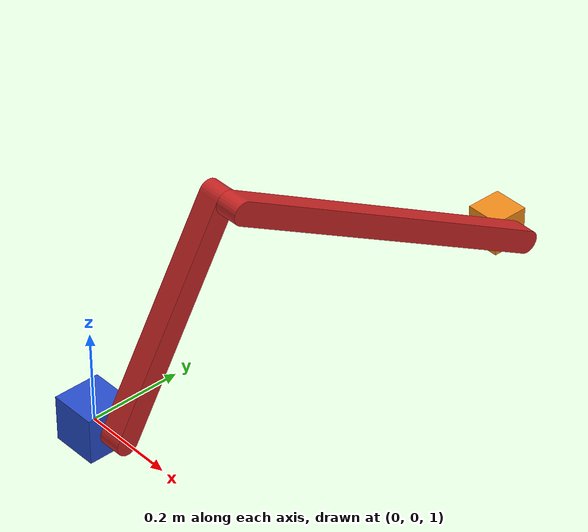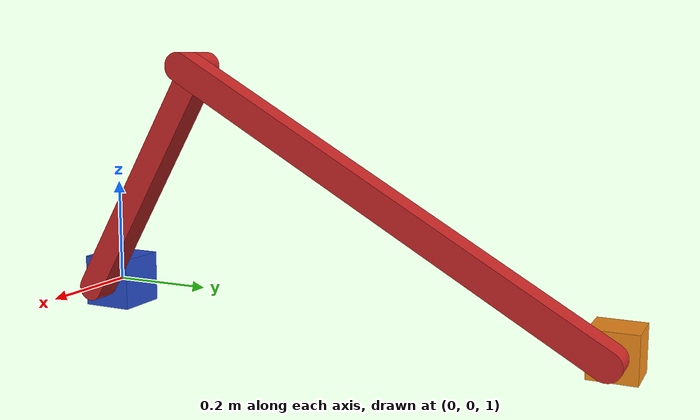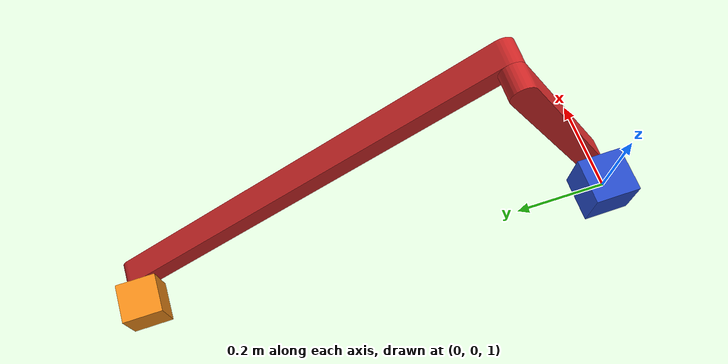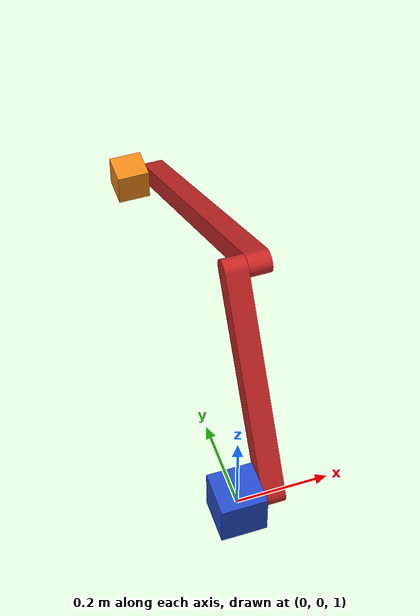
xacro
<?xml version="1.0"?>

<robot name="SliderCrank" xmlns:xacro="http://www.ros.org/wiki/xacro">

  <!-- Property -->
  <xacro:property name="M_PI" value="3.1415926535897931"/>
  <xacro:property name="deg2rad" value="${M_PI/180}"/>
  <xacro:property name="mass" value="1" />
  <xacro:property name="side" value="0.1" />
  <xacro:property name="link_side" value="${side/2}" />
  <xacro:property name="link1_length" value="${cos(60*deg2rad)+link_side}" />
  <xacro:property name="link2_length" value="${sin(60*deg2rad)+link_side}" />
  <xacro:property name="piston_side" value="${side*0.8}" />

  <!-- Import -->
  <xacro:include filename="$(find sc_description)/urdf/materials.xacro" />
  <xacro:include filename="$(find sc_description)/urdf/sc.gazebo" />
  <xacro:include filename="$(find sc_description)/urdf/sc.transmission" />

  <!-- macro -->
  <xacro:macro name="box_inertia" params="m dx dy dz">
    <inertia ixx="${m/12*(dy*dy + dz*dz)}" ixy="0.0" ixz="0.0"
             iyy="${m/12*(dx*dx + dz*dz)}" iyz="0.0"
             izz="${m/12*(dx*dx + dy*dy)}"/>
  </xacro:macro>

  <link name="world"/>

  <joint name="fixed" type="fixed">
    <parent link="world"/>
    <child link="SC_base"/>
    <origin xyz="0 0 ${side*10}" rpy="${90*deg2rad} 0 ${90*deg2rad}"/>
  </joint>

  <!-- base -->
  <link name="SC_base">
    <collision>
      <origin xyz="0 0 0" rpy="0 0 0"/>
      <geometry>
        <box size="${side} ${side} ${side}"/>
      </geometry>
    </collision>

    <visual>
      <origin xyz="0 0 0" rpy="0 0 0"/>
      <geometry>
        <box size="${side} ${side} ${side}"/>
      </geometry>
      <material name="blue"/>
    </visual>

    <inertial>
      <origin xyz="0 0 0" rpy="0 0 0"/>
      <mass value="${mass}"/>
      <xacro:box_inertia m="${mass}" dx="${side}" dy="${side}" dz="${side}"/>
    </inertial>
  </link>

  <joint name="REV01_Base_to_Lnik1" type="continuous">
    <axis xyz="0 0 1"/>
    <parent link="SC_base"/>
    <child link="SC_link1"/>
    <origin xyz="0 0 ${side/2+link_side/2}" rpy="0 0 ${-30*deg2rad}"/>
    <dynamics damping="0.7"/>
  </joint>

  <!-- link1 -->
  <link name="SC_link1">
    <collision>
      <origin rpy="0 0 0" xyz="0 ${cos(60*deg2rad)/2} 0"/>
      <geometry>
        <box size="${link_side} ${link1_length} ${link_side}"/>
      </geometry>
    </collision>

    <visual>
      <origin rpy="0 0 0" xyz="0 0 0"/>
      <geometry>
        <mesh filename="package://sc_description/meshes/SC_link1.stl"/>
      </geometry>
    </visual>

    <inertial>
      <origin rpy="0 0 0" xyz="0 ${cos(60*deg2rad)/2} 0"/>
      <mass value="${mass}"/>
      <xacro:box_inertia m="${mass}" dx="${link_side}" dy="${link1_length}" dz="${link_side}"/>
    </inertial>
  </link>

  <joint name="REV02_Lnik1_to_Lnik2" type="continuous">
    <axis xyz="0 0 1"/>
    <parent link="SC_link1"/>
    <child link="SC_link2"/>
    <origin rpy="0 0 ${-90*deg2rad}" xyz="0 ${cos(60*deg2rad)} ${link_side}"/>
    <dynamics damping="0.7"/>
  </joint>

  <!-- link2 -->
  <link name="SC_link2">
    <collision>
      <origin rpy="0 0 0" xyz="0 ${sin(60*deg2rad)/2} 0"/>
      <geometry>
        <box size="${link_side} ${link2_length} ${link_side}"/>
      </geometry>
    </collision>

    <visual>
      <origin rpy="0 0 0" xyz="0 0 0"/>
      <geometry>
        <mesh filename="package://sc_description/meshes/SC_link2.stl"/>
      </geometry>
    </visual>

    <inertial>
      <origin rpy="0 0 0" xyz="0 ${sin(60*deg2rad)/2} 0"/>
      <mass value="${mass}"/>
      <xacro:box_inertia m="${mass}" dx="${link_side}" dy="${link2_length}" dz="${link_side}"/>
    </inertial>
  </link>

  <joint name="REV03_Lnik2_to_Piston" type="continuous">
    <axis xyz="0 0 1"/>
    <parent link="SC_link2"/>
    <child link="SC_Piston"/>
    <origin rpy="0 0 ${120*deg2rad}" xyz="0 ${sin(60*deg2rad)} -${piston_side/2+link_side/2}"/>
    <dynamics damping="0.7"/>
  </joint>

  <!-- piston -->
  <link name="SC_Piston">
    <collision>
      <origin xyz="0 0 0" rpy="0 0 0"/>
      <geometry>
        <box size="${piston_side} ${piston_side} ${piston_side}"/>
      </geometry>
    </collision>

    <visual>
      <geometry>
        <box size="${piston_side} ${piston_side} ${piston_side}"/>
      </geometry>
      <origin rpy="0 0 0" xyz="0 0 0"/>
    </visual>

    <inertial>
      <origin rpy="0 0 0" xyz="0 0 0"/>
      <mass value="${mass}"/>
      <xacro:box_inertia m="${mass}" dx="${piston_side}" dy="${piston_side}" dz="${piston_side}"/>
    </inertial>
  </link>

</robot>
